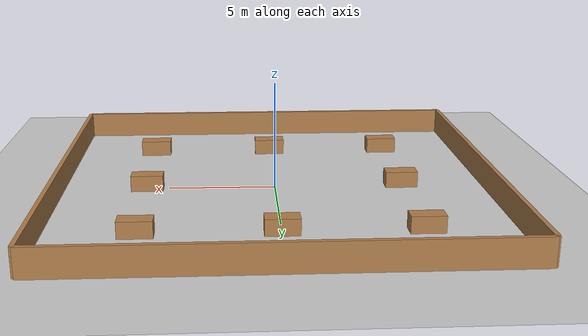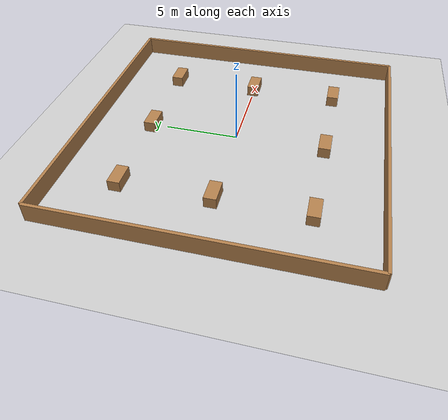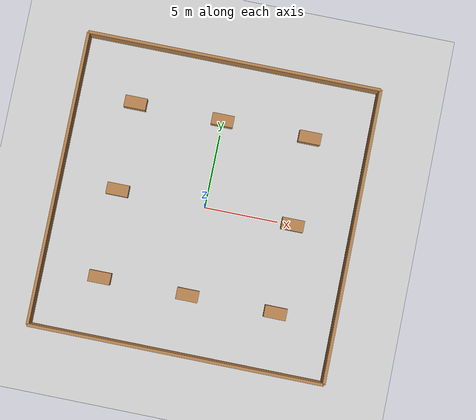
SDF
<?xml version="1.0" ?>
<sdf version="1.6">
  <world name="office_world_8desks">
    <!-- A global light source -->
    <include>
      <uri>model://sun</uri>
    </include>

    <!-- Ground plane -->
    <include>
      <uri>model://ground_plane</uri>
    </include>

    <!-- Simple office environment with walls -->
    <model name="office_room">
      <static>true</static>
      <link name="wall1">
        <collision name="collision">
          <geometry>
            <box>
              <size>0.2 20 2.5</size>
            </box>
          </geometry>
        </collision>
        <visual name="visual">
          <geometry>
            <box>
              <size>0.2 20 2.5</size>
            </box>
          </geometry>
          <material>
            <script>
              <uri>file://media/materials/scripts/gazebo.material</uri>
              <name>Gazebo/Wood</name>
            </script>
          </material>
        </visual>
      </link>
      <pose>10 0 0 0 0 0</pose>
    </model>

    <model name="office_room2">
      <static>true</static>
      <link name="wall2">
        <collision name="collision">
          <geometry>
            <box>
              <size>0.2 20 2.5</size>
            </box>
          </geometry>
        </collision>
        <visual name="visual">
          <geometry>
            <box>
              <size>0.2 20 2.5</size>
            </box>
          </geometry>
          <material>
            <script>
              <uri>file://media/materials/scripts/gazebo.material</uri>
              <name>Gazebo/Wood</name>
            </script>
          </material>
        </visual>
      </link>
      <pose>-10 0 0 0 0 0</pose>
    </model>

    <model name="office_room3">
      <static>true</static>
      <link name="wall3">
        <collision name="collision">
          <geometry>
            <box>
              <size>20 0.2 2.5</size>
            </box>
          </geometry>
        </collision>
        <visual name="visual">
          <geometry>
            <box>
              <size>20 0.2 2.5</size>
            </box>
          </geometry>
          <material>
            <script>
              <uri>file://media/materials/scripts/gazebo.material</uri>
              <name>Gazebo/Wood</name>
            </script>
          </material>
        </visual>
      </link>
      <pose>0 10 0 0 0 0</pose>
    </model>

    <model name="office_room4">
      <static>true</static>
      <link name="wall4">
        <collision name="collision">
          <geometry>
            <box>
              <size>20 0.2 2.5</size>
            </box>
          </geometry>
        </collision>
        <visual name="visual">
          <geometry>
            <box>
              <size>20 0.2 2.5</size>
            </box>
          </geometry>
          <material>
            <script>
              <uri>file://media/materials/scripts/gazebo.material</uri>
              <name>Gazebo/Wood</name>
            </script>
          </material>
        </visual>
      </link>
      <pose>0 -10 0 0 0 0</pose>
    </model>

    <!-- Desk 1 - Bottom Left -->
    <model name="desk1">
      <static>true</static>
      <link name="link">
        <collision name="collision">
          <geometry>
            <box>
              <size>1.5 0.8 0.75</size>
            </box>
          </geometry>
        </collision>
        <visual name="visual">
          <geometry>
            <box>
              <size>1.5 0.8 0.75</size>
            </box>
          </geometry>
          <material>
            <script>
              <uri>file://media/materials/scripts/gazebo.material</uri>
              <name>Gazebo/Wood</name>
            </script>
          </material>
        </visual>
      </link>
      <pose>-6 -6 0.375 0 0 0</pose>
    </model>

    <!-- Desk 2 - Bottom Center -->
    <model name="desk2">
      <static>true</static>
      <link name="link">
        <collision name="collision">
          <geometry>
            <box>
              <size>1.5 0.8 0.75</size>
            </box>
          </geometry>
        </collision>
        <visual name="visual">
          <geometry>
            <box>
              <size>1.5 0.8 0.75</size>
            </box>
          </geometry>
          <material>
            <script>
              <uri>file://media/materials/scripts/gazebo.material</uri>
              <name>Gazebo/Wood</name>
            </script>
          </material>
        </visual>
      </link>
      <pose>0 -6 0.375 0 0 0</pose>
    </model>

    <!-- Desk 3 - Bottom Right -->
    <model name="desk3">
      <static>true</static>
      <link name="link">
        <collision name="collision">
          <geometry>
            <box>
              <size>1.5 0.8 0.75</size>
            </box>
          </geometry>
        </collision>
        <visual name="visual">
          <geometry>
            <box>
              <size>1.5 0.8 0.75</size>
            </box>
          </geometry>
          <material>
            <script>
              <uri>file://media/materials/scripts/gazebo.material</uri>
              <name>Gazebo/Wood</name>
            </script>
          </material>
        </visual>
      </link>
      <pose>6 -6 0.375 0 0 0</pose>
    </model>

    <!-- Desk 4 - Center Left -->
    <model name="desk4">
      <static>true</static>
      <link name="link">
        <collision name="collision">
          <geometry>
            <box>
              <size>1.5 0.8 0.75</size>
            </box>
          </geometry>
        </collision>
        <visual name="visual">
          <geometry>
            <box>
              <size>1.5 0.8 0.75</size>
            </box>
          </geometry>
          <material>
            <script>
              <uri>file://media/materials/scripts/gazebo.material</uri>
              <name>Gazebo/Wood</name>
            </script>
          </material>
        </visual>
      </link>
      <pose>-6 0 0.375 0 0 0</pose>
    </model>

    <!-- Desk 5 - Center Right -->
    <model name="desk5">
      <static>true</static>
      <link name="link">
        <collision name="collision">
          <geometry>
            <box>
              <size>1.5 0.8 0.75</size>
            </box>
          </geometry>
        </collision>
        <visual name="visual">
          <geometry>
            <box>
              <size>1.5 0.8 0.75</size>
            </box>
          </geometry>
          <material>
            <script>
              <uri>file://media/materials/scripts/gazebo.material</uri>
              <name>Gazebo/Wood</name>
            </script>
          </material>
        </visual>
      </link>
      <pose>6 0 0.375 0 0 0</pose>
    </model>

    <!-- Desk 6 - Top Left -->
    <model name="desk6">
      <static>true</static>
      <link name="link">
        <collision name="collision">
          <geometry>
            <box>
              <size>1.5 0.8 0.75</size>
            </box>
          </geometry>
        </collision>
        <visual name="visual">
          <geometry>
            <box>
              <size>1.5 0.8 0.75</size>
            </box>
          </geometry>
          <material>
            <script>
              <uri>file://media/materials/scripts/gazebo.material</uri>
              <name>Gazebo/Wood</name>
            </script>
          </material>
        </visual>
      </link>
      <pose>-6 6 0.375 0 0 0</pose>
    </model>

    <!-- Desk 7 - Top Center -->
    <model name="desk7">
      <static>true</static>
      <link name="link">
        <collision name="collision">
          <geometry>
            <box>
              <size>1.5 0.8 0.75</size>
            </box>
          </geometry>
        </collision>
        <visual name="visual">
          <geometry>
            <box>
              <size>1.5 0.8 0.75</size>
            </box>
          </geometry>
          <material>
            <script>
              <uri>file://media/materials/scripts/gazebo.material</uri>
              <name>Gazebo/Wood</name>
            </script>
          </material>
        </visual>
      </link>
      <pose>0 6 0.375 0 0 0</pose>
    </model>

    <!-- Desk 8 - Top Right -->
    <model name="desk8">
      <static>true</static>
      <link name="link">
        <collision name="collision">
          <geometry>
            <box>
              <size>1.5 0.8 0.75</size>
            </box>
          </geometry>
        </collision>
        <visual name="visual">
          <geometry>
            <box>
              <size>1.5 0.8 0.75</size>
            </box>
          </geometry>
          <material>
            <script>
              <uri>file://media/materials/scripts/gazebo.material</uri>
              <name>Gazebo/Wood</name>
            </script>
          </material>
        </visual>
      </link>
      <pose>6 6 0.375 0 0 0</pose>
    </model>

    <!-- Physics engine -->
    <physics type="ode">
      <gravity>0 0 -9.8066</gravity>
      <ode>
        <solver>
          <type>quick</type>
          <iters>10</iters>
          <sor>1.3</sor>
          <use_dynamic_moi_rescaling>0</use_dynamic_moi_rescaling>
        </solver>
        <constraints>
          <cfm>0.00001</cfm>
          <erp>0.2</erp>
          <contact_max_correcting_vel>2000.0</contact_max_correcting_vel>
          <contact_surface_layer>0.01</contact_surface_layer>
        </constraints>
      </ode>
      <max_step_size>0.004</max_step_size>
      <real_time_factor>1.0</real_time_factor>
      <real_time_update_rate>250</real_time_update_rate>
    </physics>

    <!-- Scene -->
    <scene>
      <ambient>0.4 0.4 0.4 1</ambient>
      <background>0.7 0.7 0.7 1</background>
      <shadows>true</shadows>
    </scene>
  </world>
</sdf>
